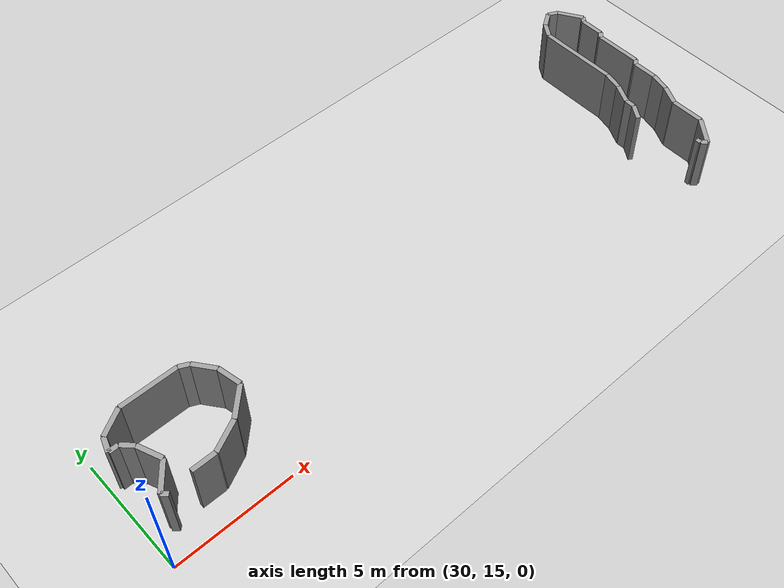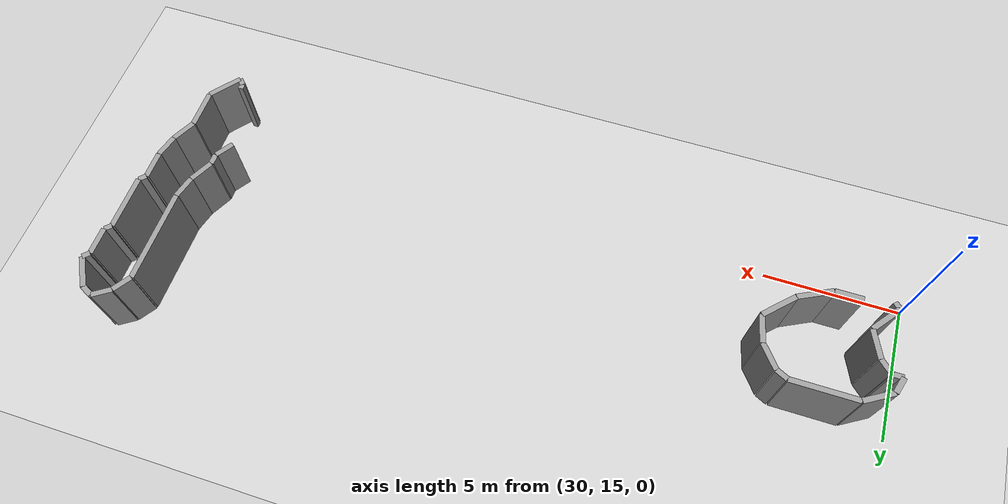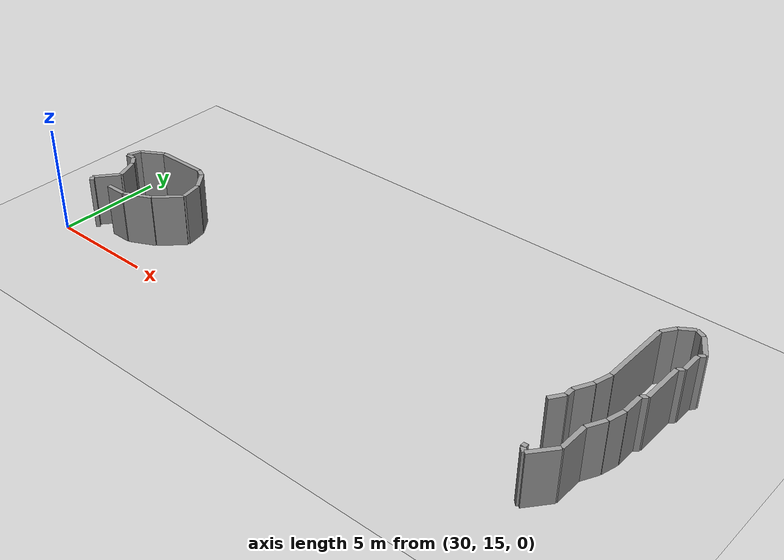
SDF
<sdf version="1.4">
 <world name="1_wall">
  <model name="ground_plane">
   <static>1</static>
   <link name="link">
    <collision name="collision">
     <geometry><plane><normal>0 0 1</normal><size>1000 1000</size></plane></geometry>
     <surface><friction><ode><mu>100</mu><mu2>50</mu2></ode></friction></surface>
    </collision>
    <visual name="visual">
     <cast_shadows>0</cast_shadows>
     <geometry><plane><normal>0 0 1</normal><size>10000 10000</size></plane></geometry>
     <material>
      <script><uri>file://media/materials/scripts/gazebo.material</uri><name>Gazebo/Grey</name></script>
     </material>
    </visual>
    <velocity_decay><linear>0</linear><angular>0</angular></velocity_decay>
   </link>
  </model>
  <model name="Wall_826">
   <static>1</static>
   <link name="Wall_826">
    <collision name="Wall_Collision_826">
     <geometry><box><size>1.0 0.2 2.5</size></box></geometry>
     <pose>0 0 1.25 0 -0 0</pose>
    </collision>
    <visual name="Wall_Visual_826">
     <pose>0 0 1.25 0 -0 0</pose>
     <geometry><box><size>1.0 0.2 2.5</size></box></geometry>
     <material>
      <script><uri>file://media/materials/scripts/gazebo.material</uri><name>Gazebo/Grey</name></script>
     </material>
    </visual>
    <velocity_decay><linear>0</linear><angular>0</angular></velocity_decay>
    <pose>32.5 16.2 0 0 0 0.0</pose>
   </link>
  </model>
  <model name="Wall_827">
   <static>1</static>
   <link name="Wall_827">
    <collision name="Wall_Collision_827">
     <geometry><box><size>1.3416407865 0.2 2.5</size></box></geometry>
     <pose>0 0 1.25 0 -0 0</pose>
    </collision>
    <visual name="Wall_Visual_827">
     <pose>0 0 1.25 0 -0 0</pose>
     <geometry><box><size>1.3416407865 0.2 2.5</size></box></geometry>
     <material>
      <script><uri>file://media/materials/scripts/gazebo.material</uri><name>Gazebo/Grey</name></script>
     </material>
    </visual>
    <velocity_decay><linear>0</linear><angular>0</angular></velocity_decay>
    <pose>33.6 16.5 0 0 0 0.463647609001</pose>
   </link>
  </model>
  <model name="Wall_828">
   <static>1</static>
   <link name="Wall_828">
    <collision name="Wall_Collision_828">
     <geometry><box><size>1.41421356237 0.2 2.5</size></box></geometry>
     <pose>0 0 1.25 0 -0 0</pose>
    </collision>
    <visual name="Wall_Visual_828">
     <pose>0 0 1.25 0 -0 0</pose>
     <geometry><box><size>1.41421356237 0.2 2.5</size></box></geometry>
     <material>
      <script><uri>file://media/materials/scripts/gazebo.material</uri><name>Gazebo/Grey</name></script>
     </material>
    </visual>
    <velocity_decay><linear>0</linear><angular>0</angular></velocity_decay>
    <pose>34.7 17.3 0 0 0 0.785398163397</pose>
   </link>
  </model>
  <model name="Wall_829">
   <static>1</static>
   <link name="Wall_829">
    <collision name="Wall_Collision_829">
     <geometry><box><size>1.01980390272 0.2 2.5</size></box></geometry>
     <pose>0 0 1.25 0 -0 0</pose>
    </collision>
    <visual name="Wall_Visual_829">
     <pose>0 0 1.25 0 -0 0</pose>
     <geometry><box><size>1.01980390272 0.2 2.5</size></box></geometry>
     <material>
      <script><uri>file://media/materials/scripts/gazebo.material</uri><name>Gazebo/Grey</name></script>
     </material>
    </visual>
    <velocity_decay><linear>0</linear><angular>0</angular></velocity_decay>
    <pose>35.1 18.3 0 0 0 1.76819188664</pose>
   </link>
  </model>
  <model name="Wall_830">
   <static>1</static>
   <link name="Wall_830">
    <collision name="Wall_Collision_830">
     <geometry><box><size>1.0 0.2 2.5</size></box></geometry>
     <pose>0 0 1.25 0 -0 0</pose>
    </collision>
    <visual name="Wall_Visual_830">
     <pose>0 0 1.25 0 -0 0</pose>
     <geometry><box><size>1.0 0.2 2.5</size></box></geometry>
     <material>
      <script><uri>file://media/materials/scripts/gazebo.material</uri><name>Gazebo/Grey</name></script>
     </material>
    </visual>
    <velocity_decay><linear>0</linear><angular>0</angular></velocity_decay>
    <pose>34.7 19.2 0 0 0 2.21429743559</pose>
   </link>
  </model>
  <model name="Wall_831">
   <static>1</static>
   <link name="Wall_831">
    <collision name="Wall_Collision_831">
     <geometry><box><size>0.4472135955 0.2 2.5</size></box></geometry>
     <pose>0 0 1.25 0 -0 0</pose>
    </collision>
    <visual name="Wall_Visual_831">
     <pose>0 0 1.25 0 -0 0</pose>
     <geometry><box><size>0.4472135955 0.2 2.5</size></box></geometry>
     <material>
      <script><uri>file://media/materials/scripts/gazebo.material</uri><name>Gazebo/Grey</name></script>
     </material>
    </visual>
    <velocity_decay><linear>0</linear><angular>0</angular></velocity_decay>
    <pose>34.2 19.7 0 0 0 2.67794504459</pose>
   </link>
  </model>
  <model name="Wall_832">
   <static>1</static>
   <link name="Wall_832">
    <collision name="Wall_Collision_832">
     <geometry><box><size>2.4 0.2 2.5</size></box></geometry>
     <pose>0 0 1.25 0 -0 0</pose>
    </collision>
    <visual name="Wall_Visual_832">
     <pose>0 0 1.25 0 -0 0</pose>
     <geometry><box><size>2.4 0.2 2.5</size></box></geometry>
     <material>
      <script><uri>file://media/materials/scripts/gazebo.material</uri><name>Gazebo/Grey</name></script>
     </material>
    </visual>
    <velocity_decay><linear>0</linear><angular>0</angular></velocity_decay>
    <pose>32.8 19.8 0 0 0 3.14159265359</pose>
   </link>
  </model>
  <model name="Wall_833">
   <static>1</static>
   <link name="Wall_833">
    <collision name="Wall_Collision_833">
     <geometry><box><size>1.16619037897 0.2 2.5</size></box></geometry>
     <pose>0 0 1.25 0 -0 0</pose>
    </collision>
    <visual name="Wall_Visual_833">
     <pose>0 0 1.25 0 -0 0</pose>
     <geometry><box><size>1.16619037897 0.2 2.5</size></box></geometry>
     <material>
      <script><uri>file://media/materials/scripts/gazebo.material</uri><name>Gazebo/Grey</name></script>
     </material>
    </visual>
    <velocity_decay><linear>0</linear><angular>0</angular></velocity_decay>
    <pose>31.1 19.5 0 0 0 -2.60117315332</pose>
   </link>
  </model>
  <model name="Wall_834">
   <static>1</static>
   <link name="Wall_834">
    <collision name="Wall_Collision_834">
     <geometry><box><size>0.632455532034 0.2 2.5</size></box></geometry>
     <pose>0 0 1.25 0 -0 0</pose>
    </collision>
    <visual name="Wall_Visual_834">
     <pose>0 0 1.25 0 -0 0</pose>
     <geometry><box><size>0.632455532034 0.2 2.5</size></box></geometry>
     <material>
      <script><uri>file://media/materials/scripts/gazebo.material</uri><name>Gazebo/Grey</name></script>
     </material>
    </visual>
    <velocity_decay><linear>0</linear><angular>0</angular></velocity_decay>
    <pose>30.5 18.9 0 0 0 -1.89254688119</pose>
   </link>
  </model>
  <model name="Wall_835">
   <static>1</static>
   <link name="Wall_835">
    <collision name="Wall_Collision_835">
     <geometry><box><size>0.4 0.2 2.5</size></box></geometry>
     <pose>0 0 1.25 0 -0 0</pose>
    </collision>
    <visual name="Wall_Visual_835">
     <pose>0 0 1.25 0 -0 0</pose>
     <geometry><box><size>0.4 0.2 2.5</size></box></geometry>
     <material>
      <script><uri>file://media/materials/scripts/gazebo.material</uri><name>Gazebo/Grey</name></script>
     </material>
    </visual>
    <velocity_decay><linear>0</linear><angular>0</angular></velocity_decay>
    <pose>30.6 18.6 0 0 0 0.0</pose>
   </link>
  </model>
  <model name="Wall_836">
   <static>1</static>
   <link name="Wall_836">
    <collision name="Wall_Collision_836">
     <geometry><box><size>0.565685424949 0.2 2.5</size></box></geometry>
     <pose>0 0 1.25 0 -0 0</pose>
    </collision>
    <visual name="Wall_Visual_836">
     <pose>0 0 1.25 0 -0 0</pose>
     <geometry><box><size>0.565685424949 0.2 2.5</size></box></geometry>
     <material>
      <script><uri>file://media/materials/scripts/gazebo.material</uri><name>Gazebo/Grey</name></script>
     </material>
    </visual>
    <velocity_decay><linear>0</linear><angular>0</angular></velocity_decay>
    <pose>31.0 18.4 0 0 0 -0.785398163397</pose>
   </link>
  </model>
  <model name="Wall_837">
   <static>1</static>
   <link name="Wall_837">
    <collision name="Wall_Collision_837">
     <geometry><box><size>1.07703296143 0.2 2.5</size></box></geometry>
     <pose>0 0 1.25 0 -0 0</pose>
    </collision>
    <visual name="Wall_Visual_837">
     <pose>0 0 1.25 0 -0 0</pose>
     <geometry><box><size>1.07703296143 0.2 2.5</size></box></geometry>
     <material>
      <script><uri>file://media/materials/scripts/gazebo.material</uri><name>Gazebo/Grey</name></script>
     </material>
    </visual>
    <velocity_decay><linear>0</linear><angular>0</angular></velocity_decay>
    <pose>31.4 17.7 0 0 0 -1.19028994968</pose>
   </link>
  </model>
  <model name="Wall_838">
   <static>1</static>
   <link name="Wall_838">
    <collision name="Wall_Collision_838">
     <geometry><box><size>1.28062484749 0.2 2.5</size></box></geometry>
     <pose>0 0 1.25 0 -0 0</pose>
    </collision>
    <visual name="Wall_Visual_838">
     <pose>0 0 1.25 0 -0 0</pose>
     <geometry><box><size>1.28062484749 0.2 2.5</size></box></geometry>
     <material>
      <script><uri>file://media/materials/scripts/gazebo.material</uri><name>Gazebo/Grey</name></script>
     </material>
    </visual>
    <velocity_decay><linear>0</linear><angular>0</angular></velocity_decay>
    <pose>31.2 16.7 0 0 0 -2.24553726902</pose>
   </link>
  </model>
  <model name="Wall_839">
   <static>1</static>
   <link name="Wall_839">
    <collision name="Wall_Collision_839">
     <geometry><box><size>0.282842712475 0.2 2.5</size></box></geometry>
     <pose>0 0 1.25 0 -0 0</pose>
    </collision>
    <visual name="Wall_Visual_839">
     <pose>0 0 1.25 0 -0 0</pose>
     <geometry><box><size>0.282842712475 0.2 2.5</size></box></geometry>
     <material>
      <script><uri>file://media/materials/scripts/gazebo.material</uri><name>Gazebo/Grey</name></script>
     </material>
    </visual>
    <velocity_decay><linear>0</linear><angular>0</angular></velocity_decay>
    <pose>30.9 16.1 0 0 0 -0.785398163397</pose>
   </link>
  </model>
  <model name="Wall_840">
   <static>1</static>
   <link name="Wall_840">
    <collision name="Wall_Collision_840">
     <geometry><box><size>0.2 0.2 2.5</size></box></geometry>
     <pose>0 0 1.25 0 -0 0</pose>
    </collision>
    <visual name="Wall_Visual_840">
     <pose>0 0 1.25 0 -0 0</pose>
     <geometry><box><size>0.2 0.2 2.5</size></box></geometry>
     <material>
      <script><uri>file://media/materials/scripts/gazebo.material</uri><name>Gazebo/Grey</name></script>
     </material>
    </visual>
    <velocity_decay><linear>0</linear><angular>0</angular></velocity_decay>
    <pose>55.8 14.5 0 0 0 -1.57079632679</pose>
   </link>
  </model>
  <model name="Wall_841">
   <static>1</static>
   <link name="Wall_841">
    <collision name="Wall_Collision_841">
     <geometry><box><size>0.282842712475 0.2 2.5</size></box></geometry>
     <pose>0 0 1.25 0 -0 0</pose>
    </collision>
    <visual name="Wall_Visual_841">
     <pose>0 0 1.25 0 -0 0</pose>
     <geometry><box><size>0.282842712475 0.2 2.5</size></box></geometry>
     <material>
      <script><uri>file://media/materials/scripts/gazebo.material</uri><name>Gazebo/Grey</name></script>
     </material>
    </visual>
    <velocity_decay><linear>0</linear><angular>0</angular></velocity_decay>
    <pose>55.9 14.3 0 0 0 -0.785398163397</pose>
   </link>
  </model>
  <model name="Wall_842">
   <static>1</static>
   <link name="Wall_842">
    <collision name="Wall_Collision_842">
     <geometry><box><size>1.28062484749 0.2 2.5</size></box></geometry>
     <pose>0 0 1.25 0 -0 0</pose>
    </collision>
    <visual name="Wall_Visual_842">
     <pose>0 0 1.25 0 -0 0</pose>
     <geometry><box><size>1.28062484749 0.2 2.5</size></box></geometry>
     <material>
      <script><uri>file://media/materials/scripts/gazebo.material</uri><name>Gazebo/Grey</name></script>
     </material>
    </visual>
    <velocity_decay><linear>0</linear><angular>0</angular></velocity_decay>
    <pose>56.4 14.7 0 0 0 0.896055384571</pose>
   </link>
  </model>
  <model name="Wall_843">
   <static>1</static>
   <link name="Wall_843">
    <collision name="Wall_Collision_843">
     <geometry><box><size>1.4 0.2 2.5</size></box></geometry>
     <pose>0 0 1.25 0 -0 0</pose>
    </collision>
    <visual name="Wall_Visual_843">
     <pose>0 0 1.25 0 -0 0</pose>
     <geometry><box><size>1.4 0.2 2.5</size></box></geometry>
     <material>
      <script><uri>file://media/materials/scripts/gazebo.material</uri><name>Gazebo/Grey</name></script>
     </material>
    </visual>
    <velocity_decay><linear>0</linear><angular>0</angular></velocity_decay>
    <pose>56.8 15.9 0 0 0 1.57079632679</pose>
   </link>
  </model>
  <model name="Wall_844">
   <static>1</static>
   <link name="Wall_844">
    <collision name="Wall_Collision_844">
     <geometry><box><size>0.894427191 0.2 2.5</size></box></geometry>
     <pose>0 0 1.25 0 -0 0</pose>
    </collision>
    <visual name="Wall_Visual_844">
     <pose>0 0 1.25 0 -0 0</pose>
     <geometry><box><size>0.894427191 0.2 2.5</size></box></geometry>
     <material>
      <script><uri>file://media/materials/scripts/gazebo.material</uri><name>Gazebo/Grey</name></script>
     </material>
    </visual>
    <velocity_decay><linear>0</linear><angular>0</angular></velocity_decay>
    <pose>57.0 17.0 0 0 0 1.10714871779</pose>
   </link>
  </model>
  <model name="Wall_845">
   <static>1</static>
   <link name="Wall_845">
    <collision name="Wall_Collision_845">
     <geometry><box><size>0.824621125124 0.2 2.5</size></box></geometry>
     <pose>0 0 1.25 0 -0 0</pose>
    </collision>
    <visual name="Wall_Visual_845">
     <pose>0 0 1.25 0 -0 0</pose>
     <geometry><box><size>0.824621125124 0.2 2.5</size></box></geometry>
     <material>
      <script><uri>file://media/materials/scripts/gazebo.material</uri><name>Gazebo/Grey</name></script>
     </material>
    </visual>
    <velocity_decay><linear>0</linear><angular>0</angular></velocity_decay>
    <pose>57.3 17.8 0 0 0 1.32581766367</pose>
   </link>
  </model>
  <model name="Wall_846">
   <static>1</static>
   <link name="Wall_846">
    <collision name="Wall_Collision_846">
     <geometry><box><size>1.0 0.2 2.5</size></box></geometry>
     <pose>0 0 1.25 0 -0 0</pose>
    </collision>
    <visual name="Wall_Visual_846">
     <pose>0 0 1.25 0 -0 0</pose>
     <geometry><box><size>1.0 0.2 2.5</size></box></geometry>
     <material>
      <script><uri>file://media/materials/scripts/gazebo.material</uri><name>Gazebo/Grey</name></script>
     </material>
    </visual>
    <velocity_decay><linear>0</linear><angular>0</angular></velocity_decay>
    <pose>57.4 18.7 0 0 0 1.57079632679</pose>
   </link>
  </model>
  <model name="Wall_847">
   <static>1</static>
   <link name="Wall_847">
    <collision name="Wall_Collision_847">
     <geometry><box><size>0.282842712475 0.2 2.5</size></box></geometry>
     <pose>0 0 1.25 0 -0 0</pose>
    </collision>
    <visual name="Wall_Visual_847">
     <pose>0 0 1.25 0 -0 0</pose>
     <geometry><box><size>0.282842712475 0.2 2.5</size></box></geometry>
     <material>
      <script><uri>file://media/materials/scripts/gazebo.material</uri><name>Gazebo/Grey</name></script>
     </material>
    </visual>
    <velocity_decay><linear>0</linear><angular>0</angular></velocity_decay>
    <pose>57.5 19.3 0 0 0 0.785398163397</pose>
   </link>
  </model>
  <model name="Wall_848">
   <static>1</static>
   <link name="Wall_848">
    <collision name="Wall_Collision_848">
     <geometry><box><size>2.0 0.2 2.5</size></box></geometry>
     <pose>0 0 1.25 0 -0 0</pose>
    </collision>
    <visual name="Wall_Visual_848">
     <pose>0 0 1.25 0 -0 0</pose>
     <geometry><box><size>2.0 0.2 2.5</size></box></geometry>
     <material>
      <script><uri>file://media/materials/scripts/gazebo.material</uri><name>Gazebo/Grey</name></script>
     </material>
    </visual>
    <velocity_decay><linear>0</linear><angular>0</angular></velocity_decay>
    <pose>57.6 20.4 0 0 0 1.57079632679</pose>
   </link>
  </model>
  <model name="Wall_849">
   <static>1</static>
   <link name="Wall_849">
    <collision name="Wall_Collision_849">
     <geometry><box><size>0.282842712475 0.2 2.5</size></box></geometry>
     <pose>0 0 1.25 0 -0 0</pose>
    </collision>
    <visual name="Wall_Visual_849">
     <pose>0 0 1.25 0 -0 0</pose>
     <geometry><box><size>0.282842712475 0.2 2.5</size></box></geometry>
     <material>
      <script><uri>file://media/materials/scripts/gazebo.material</uri><name>Gazebo/Grey</name></script>
     </material>
    </visual>
    <velocity_decay><linear>0</linear><angular>0</angular></velocity_decay>
    <pose>57.7 21.5 0 0 0 0.785398163397</pose>
   </link>
  </model>
  <model name="Wall_850">
   <static>1</static>
   <link name="Wall_850">
    <collision name="Wall_Collision_850">
     <geometry><box><size>1.0 0.2 2.5</size></box></geometry>
     <pose>0 0 1.25 0 -0 0</pose>
    </collision>
    <visual name="Wall_Visual_850">
     <pose>0 0 1.25 0 -0 0</pose>
     <geometry><box><size>1.0 0.2 2.5</size></box></geometry>
     <material>
      <script><uri>file://media/materials/scripts/gazebo.material</uri><name>Gazebo/Grey</name></script>
     </material>
    </visual>
    <velocity_decay><linear>0</linear><angular>0</angular></velocity_decay>
    <pose>57.8 22.1 0 0 0 1.57079632679</pose>
   </link>
  </model>
  <model name="Wall_851">
   <static>1</static>
   <link name="Wall_851">
    <collision name="Wall_Collision_851">
     <geometry><box><size>0.282842712475 0.2 2.5</size></box></geometry>
     <pose>0 0 1.25 0 -0 0</pose>
    </collision>
    <visual name="Wall_Visual_851">
     <pose>0 0 1.25 0 -0 0</pose>
     <geometry><box><size>0.282842712475 0.2 2.5</size></box></geometry>
     <material>
      <script><uri>file://media/materials/scripts/gazebo.material</uri><name>Gazebo/Grey</name></script>
     </material>
    </visual>
    <velocity_decay><linear>0</linear><angular>0</angular></velocity_decay>
    <pose>57.9 22.7 0 0 0 0.785398163397</pose>
   </link>
  </model>
  <model name="Wall_852">
   <static>1</static>
   <link name="Wall_852">
    <collision name="Wall_Collision_852">
     <geometry><box><size>1.16619037897 0.2 2.5</size></box></geometry>
     <pose>0 0 1.25 0 -0 0</pose>
    </collision>
    <visual name="Wall_Visual_852">
     <pose>0 0 1.25 0 -0 0</pose>
     <geometry><box><size>1.16619037897 0.2 2.5</size></box></geometry>
     <material>
      <script><uri>file://media/materials/scripts/gazebo.material</uri><name>Gazebo/Grey</name></script>
     </material>
    </visual>
    <velocity_decay><linear>0</linear><angular>0</angular></velocity_decay>
    <pose>57.7 23.3 0 0 0 2.11121582707</pose>
   </link>
  </model>
  <model name="Wall_853">
   <static>1</static>
   <link name="Wall_853">
    <collision name="Wall_Collision_853">
     <geometry><box><size>0.4472135955 0.2 2.5</size></box></geometry>
     <pose>0 0 1.25 0 -0 0</pose>
    </collision>
    <visual name="Wall_Visual_853">
     <pose>0 0 1.25 0 -0 0</pose>
     <geometry><box><size>0.4472135955 0.2 2.5</size></box></geometry>
     <material>
      <script><uri>file://media/materials/scripts/gazebo.material</uri><name>Gazebo/Grey</name></script>
     </material>
    </visual>
    <velocity_decay><linear>0</linear><angular>0</angular></velocity_decay>
    <pose>57.2 23.9 0 0 0 2.67794504459</pose>
   </link>
  </model>
  <model name="Wall_854">
   <static>1</static>
   <link name="Wall_854">
    <collision name="Wall_Collision_854">
     <geometry><box><size>0.721110255093 0.2 2.5</size></box></geometry>
     <pose>0 0 1.25 0 -0 0</pose>
    </collision>
    <visual name="Wall_Visual_854">
     <pose>0 0 1.25 0 -0 0</pose>
     <geometry><box><size>0.721110255093 0.2 2.5</size></box></geometry>
     <material>
      <script><uri>file://media/materials/scripts/gazebo.material</uri><name>Gazebo/Grey</name></script>
     </material>
    </visual>
    <velocity_decay><linear>0</linear><angular>0</angular></velocity_decay>
    <pose>56.7 23.8 0 0 0 -2.55359005004</pose>
   </link>
  </model>
  <model name="Wall_855">
   <static>1</static>
   <link name="Wall_855">
    <collision name="Wall_Collision_855">
     <geometry><box><size>0.721110255093 0.2 2.5</size></box></geometry>
     <pose>0 0 1.25 0 -0 0</pose>
    </collision>
    <visual name="Wall_Visual_855">
     <pose>0 0 1.25 0 -0 0</pose>
     <geometry><box><size>0.721110255093 0.2 2.5</size></box></geometry>
     <material>
      <script><uri>file://media/materials/scripts/gazebo.material</uri><name>Gazebo/Grey</name></script>
     </material>
    </visual>
    <velocity_decay><linear>0</linear><angular>0</angular></velocity_decay>
    <pose>56.2 23.3 0 0 0 -2.15879893034</pose>
   </link>
  </model>
  <model name="Wall_856">
   <static>1</static>
   <link name="Wall_856">
    <collision name="Wall_Collision_856">
     <geometry><box><size>3.4 0.2 2.5</size></box></geometry>
     <pose>0 0 1.25 0 -0 0</pose>
    </collision>
    <visual name="Wall_Visual_856">
     <pose>0 0 1.25 0 -0 0</pose>
     <geometry><box><size>3.4 0.2 2.5</size></box></geometry>
     <material>
      <script><uri>file://media/materials/scripts/gazebo.material</uri><name>Gazebo/Grey</name></script>
     </material>
    </visual>
    <velocity_decay><linear>0</linear><angular>0</angular></velocity_decay>
    <pose>56.0 21.3 0 0 0 -1.57079632679</pose>
   </link>
  </model>
  <model name="Wall_857">
   <static>1</static>
   <link name="Wall_857">
    <collision name="Wall_Collision_857">
     <geometry><box><size>0.824621125124 0.2 2.5</size></box></geometry>
     <pose>0 0 1.25 0 -0 0</pose>
    </collision>
    <visual name="Wall_Visual_857">
     <pose>0 0 1.25 0 -0 0</pose>
     <geometry><box><size>0.824621125124 0.2 2.5</size></box></geometry>
     <material>
      <script><uri>file://media/materials/scripts/gazebo.material</uri><name>Gazebo/Grey</name></script>
     </material>
    </visual>
    <velocity_decay><linear>0</linear><angular>0</angular></velocity_decay>
    <pose>55.9 19.2 0 0 0 -1.81577498992</pose>
   </link>
  </model>
  <model name="Wall_858">
   <static>1</static>
   <link name="Wall_858">
    <collision name="Wall_Collision_858">
     <geometry><box><size>0.894427191 0.2 2.5</size></box></geometry>
     <pose>0 0 1.25 0 -0 0</pose>
    </collision>
    <visual name="Wall_Visual_858">
     <pose>0 0 1.25 0 -0 0</pose>
     <geometry><box><size>0.894427191 0.2 2.5</size></box></geometry>
     <material>
      <script><uri>file://media/materials/scripts/gazebo.material</uri><name>Gazebo/Grey</name></script>
     </material>
    </visual>
    <velocity_decay><linear>0</linear><angular>0</angular></velocity_decay>
    <pose>55.6 18.4 0 0 0 -2.0344439358</pose>
   </link>
  </model>
  <model name="Wall_859">
   <static>1</static>
   <link name="Wall_859">
    <collision name="Wall_Collision_859">
     <geometry><box><size>0.4 0.2 2.5</size></box></geometry>
     <pose>0 0 1.25 0 -0 0</pose>
    </collision>
    <visual name="Wall_Visual_859">
     <pose>0 0 1.25 0 -0 0</pose>
     <geometry><box><size>0.4 0.2 2.5</size></box></geometry>
     <material>
      <script><uri>file://media/materials/scripts/gazebo.material</uri><name>Gazebo/Grey</name></script>
     </material>
    </visual>
    <velocity_decay><linear>0</linear><angular>0</angular></velocity_decay>
    <pose>55.4 17.8 0 0 0 -1.57079632679</pose>
   </link>
  </model>
  <model name="Wall_860">
   <static>1</static>
   <link name="Wall_860">
    <collision name="Wall_Collision_860">
     <geometry><box><size>0.721110255093 0.2 2.5</size></box></geometry>
     <pose>0 0 1.25 0 -0 0</pose>
    </collision>
    <visual name="Wall_Visual_860">
     <pose>0 0 1.25 0 -0 0</pose>
     <geometry><box><size>0.721110255093 0.2 2.5</size></box></geometry>
     <material>
      <script><uri>file://media/materials/scripts/gazebo.material</uri><name>Gazebo/Grey</name></script>
     </material>
    </visual>
    <velocity_decay><linear>0</linear><angular>0</angular></velocity_decay>
    <pose>55.2 17.3 0 0 0 -2.15879893034</pose>
   </link>
  </model>
 </world>
</sdf>
